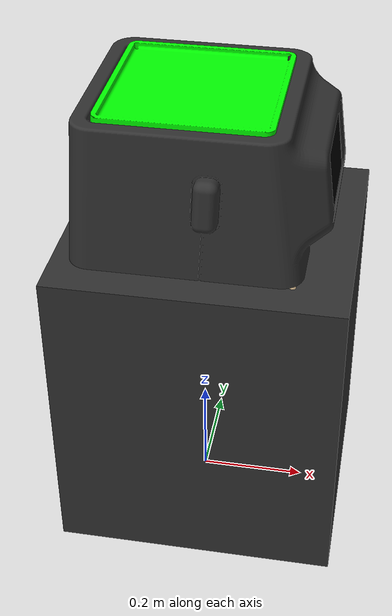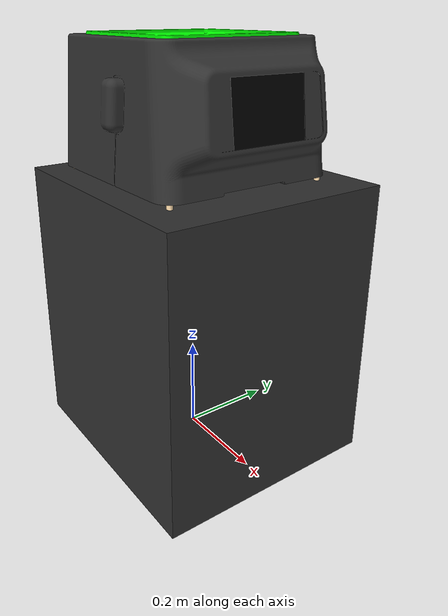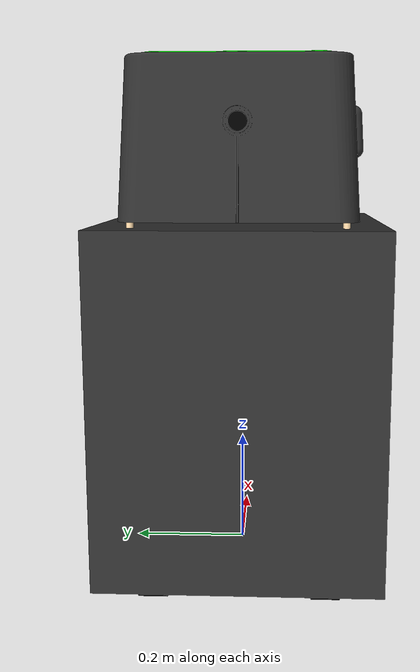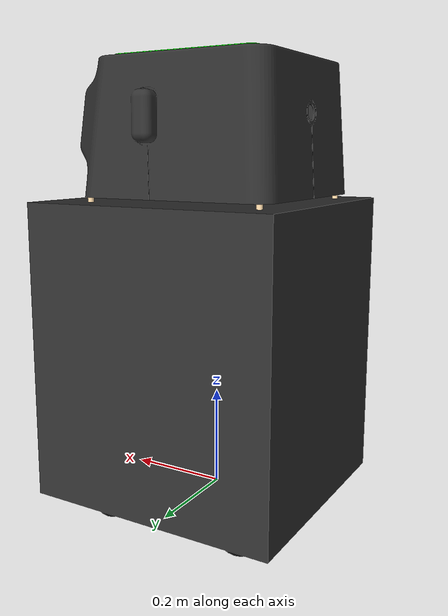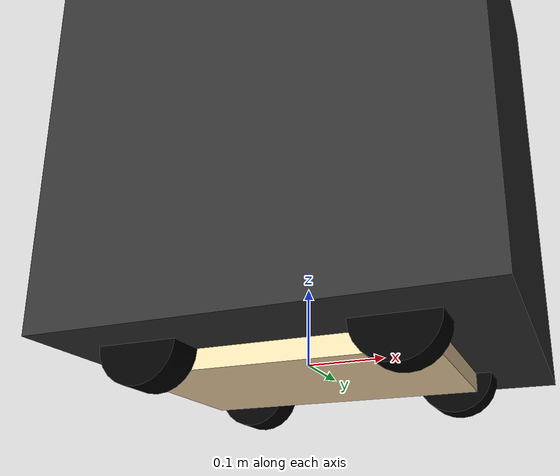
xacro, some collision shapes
<?xml version="1.0"?>
<robot name="cr2" xmlns:xacro="http://ros.org/wiki/xacro">

  <xacro:include filename="$(find cr2_description)/urdf/materials.urdf.xacro" />
  <xacro:include filename="$(find cr2_description)/urdf/common.urdf.xacro" />
  <xacro:include filename="$(find cr2_description)/urdf/modified_wheels.urdf.xacro" />
  <xacro:include filename="$(find cr2_description)/urdf/helpers/add_wheels.urdf.xacro" />
  <xacro:include filename="$(find cr2_description)/urdf/helpers/add_base_link.urdf.xacro"/>
  <xacro:include filename="$(find cr2_description)/urdf/helpers/add_body.urdf.xacro"/>
  <xacro:include filename="$(find cr2_description)/urdf/helpers/add_head.urdf.xacro"/>
  <xacro:include filename="$(find cr2_description)/urdf/helpers/add_sensors.urdf.xacro"/>

  <xacro:include filename="$(find cr2_description)/urdf/pillar.urdf.xacro"/>

  <xacro:include filename="$(find cr2_description)/params/cr2_params.urdf.xacro"/>

  <xacro:add_base
          parent_length="${base_platform_length}"
          parent_height="${base_platform_height}"
          parent_width="${base_platform_width}"/>
  <xacro:add_wheels
          parent_length="${base_platform_length}"
          parent_height="${base_platform_height}"
          parent_width="${base_platform_width}"
          mode="${mode}"/>
  <xacro:add_body  parent_link="base_platform">
    <xacro:body_to_base_platform_translation_mash/>
  </xacro:add_body>

  <xacro:add_head   parent_link="body"/>

  <xacro:pillar parent_link_name="body" position="FRONT_RIGHT"
                x="${front_back_pillar_offset}" z="${body_box_z}" y="${right_left_pillar_offset}"/>
  <xacro:pillar parent_link_name="body" position="FRONT_LEFT"
                x="${front_back_pillar_offset}" z="${body_box_z}" y="${-right_left_pillar_offset}"/>
  <xacro:pillar parent_link_name="body" position="REAR_RIGHT"
                x="${-front_back_pillar_offset}" z="${body_box_z}" y="${right_left_pillar_offset}"/>
  <xacro:pillar parent_link_name="body" position="REAR_LEFT"
                x="${-front_back_pillar_offset}" z="${body_box_z}" y="${-right_left_pillar_offset}"/>

  <xacro:add_sensors/>

  <xacro:include filename="$(find cr2_description)/robot/cr2.gazebo.xacro"/>

</robot>

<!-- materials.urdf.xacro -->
<robot xmlns:xacro="http://ros.org/wiki/xacro">

  <xacro:macro name="white_material">
    <material name="white">
      <color rgba="1.0 1.0 1.0 1.0"/>
    </material>
  </xacro:macro>

  <xacro:macro name="black_material">
    <material name="black">
      <color rgba="0.0 0.0 0.0 1.0"/>
    </material>
  </xacro:macro>

  <xacro:macro name="navajo_white_material">
    <material name="navajo_white">
      <color rgba="1.0 0.87 0.68 1.0"/>
    </material>
  </xacro:macro>

  <xacro:macro name="red_material">
    <material name="red">
      <color rgba="1.0 0.0 0.0 1.0"/>
    </material>
  </xacro:macro>

  <xacro:macro name="green_material">
    <material name="green">
      <color rgba="0.0 1.0 0.0 1.0"/>
    </material>
  </xacro:macro>

  <xacro:macro name="blue_material">
    <material name="blue">
      <color rgba="0.0 0.0 1.0 1.0"/>
    </material>
  </xacro:macro>

  <xacro:macro name="set_material" params="color">
  	<material name="${color}">
	    <xacro:if value="${color == 'White'}">
                <color rgba="1.0 1.0 1.0 1.0"/>
	    </xacro:if>
	    <xacro:if value="${color == 'Black'}">
                <color rgba="0.0 0.0 0.0 1.0"/>
	    </xacro:if>
	    <xacro:if value="${color == 'Red'}">
        	<color rgba="1.0 0.0 0.0 1.0"/>
	    </xacro:if>
	    <xacro:if value="${color == 'Green'}">
        	<color rgba="0.0 1.0 0.0 1.0"/>
	    </xacro:if>
	    <xacro:if value="${color == 'Blue'}">
                <color rgba="0.0 0.0 1.0 1.0"/>
	    </xacro:if>
	    <xacro:if value="${color == 'Yellow'}">
                <color rgba="1.0 1.0 0.0 1.0"/>
	    </xacro:if>
	    <xacro:if value="${color == 'Grey'}">
                <color rgba="0.5 0.5 0.5 1.0"/>
	    </xacro:if>
      <xacro:if value="${color == 'DarkGrey'}">
                <color rgba="0.19 0.19 0.19 1.0"/>
	    </xacro:if>
    </material>
  </xacro:macro>

  <!-- Full list of colors is available here
	  http://wiki.ros.org/simulator_gazebo/Tutorials/ListOfMaterials
  -->
  <xacro:macro name="set_gazebo_material" params="color">
	  <material>Gazebo/${color}</material>
  </xacro:macro>

</robot>

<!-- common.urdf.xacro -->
<robot xmlns:xacro="http://ros.org/wiki/xacro">
  <xacro:macro name="sphere_inertia" params="mass radius">

    <inertial>
      <mass value="${mass}"/>
      <origin xyz="0 0 0"/>

      <inertia ixx="${2*mass*radius*radius/5}" ixy="0.0" ixz="0.0"
               iyy="${2*mass*radius*radius/5}" iyz="0.0"
               izz="${2*mass*radius*radius/5}"/>
    </inertial>
  </xacro:macro>

  <xacro:macro name="sphere_inertia_gazebo" params="mass radius">
    <inertial>
      <mass>${mass}</mass>
      <inertia>
        <ixx>${2*mass*radius*radius/5}</ixx>
        <ixy>0</ixy>
        <iyy>${2*mass*radius*radius/5}</iyy>
        <ixz>0</ixz>
        <iyz>0</iyz>
        <izz>${2*mass*radius*radius/5}</izz>
      </inertia>
    </inertial>
  </xacro:macro>

  <xacro:macro name="sphere_geometry" params="radius">
    <geometry>
      <sphere radius="${radius}"/>
    </geometry>
  </xacro:macro>

  <xacro:macro name="sphere_geometry_gazebo" params="radius">
    <geometry>
      <sphere>
        <radius>${radius}</radius>
      </sphere>
    </geometry>
  </xacro:macro>

  <xacro:macro name="sphere_collision" params="radius">
    <collision>
      <xacro:sphere_geometry radius="${radius}"/>
    </collision>
  </xacro:macro>

  <xacro:macro name="cylinder_inertia" params="mass radius height">
    <inertial>
      <mass value="${mass}"/>
      <origin xyz="0 0 0"/>
      <inertia ixx="${(3*radius*radius + height*height)*mass/12}" ixy="0.0" ixz="0.0"
               iyy="${(3*radius*radius + height*height)*mass/12}" iyz="0.0"
               izz="${radius*radius*mass/2}"/>
    </inertial>
  </xacro:macro>

  <xacro:macro name="cylinder_geometry" params="radius height">
    <geometry>
      <cylinder length="${height}" radius="${radius}"/>
    </geometry>
  </xacro:macro>

  <xacro:macro name="cylinder_collision" params="radius height">
    <collision>
      <xacro:cylinder_geometry radius="${radius}" height="${height}"/>
    </collision>
  </xacro:macro>

  <xacro:macro name="set_box" params="width height depth">
    <geometry>
      <box size="${width} ${height} ${depth}"/>
    </geometry>
  </xacro:macro>

  <xacro:macro name="set_inertial"
               params="mass
                       width
                       height
                       depth
                       *origin_">
    <inertial>
      <xacro:insert_block name="origin_" />
      <mass value="${mass}"/>
      <inertia ixx="${(depth*depth + height*height)*mass/12}" ixy="0.0" ixz="0.0"
               iyy="${(depth*depth + width*width)*mass/12}" iyz="0.0"
               izz="${(width*width + height*height)*mass/12}"/>
    </inertial>
  </xacro:macro>

  <xacro:macro name="box_inertia" params="mass width height depth x:=0 y:=0 z:=0 roll:=0 pitch:=0 yaw:=0">
    <inertial>
      <origin xyz="${x} ${y} ${z}" rpy="${roll} ${pitch} ${yaw}"/>
      <mass value="${mass}"/>
      <inertia ixx="${(depth*depth + height*height)*mass/12}" ixy="0.0" ixz="0.0"
               iyy="${(depth*depth + width*width)*mass/12}" iyz="0.0"
               izz="${(width*width + height*height)*mass/12}"/>
    </inertial>
  </xacro:macro>

  <xacro:macro name="box_geometry" params="width height depth">
    <geometry>
      <box size="${width} ${height} ${depth}"/>
    </geometry>
  </xacro:macro>

  <xacro:macro name="box_collision" params="*origin width height depth">
    <collision>
      <xacro:insert_block name="origin" />
      <xacro:box_geometry width="${width}" height="${height}" depth="${depth}"/>
    </collision>
  </xacro:macro>

  <!--TODO concider do we realy need it (refactor nested xacro if needed, not sure-->
  <xacro:macro name="mesh_collision" params="*origin *mesh">
    <collision>
    </collision>
  </xacro:macro>

</robot>

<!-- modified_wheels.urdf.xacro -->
<robot xmlns:xacro="http://ros.org/wiki/xacro">

    <xacro:include filename="$(find cr2_description)/params/cr2_params.urdf.xacro"/>

    <xacro:macro name="wheel" params="prefix
                                       side
                                        wheel_type
                                        mode
                                        *joint_pose">

        <link name="${prefix}_${side}_wheel_link">
            <visual>
                <xacro:if value="${mode == 'debug'}">
                    <origin xyz="0 0 0" rpy="${PI/2} 0 0"/>
                    <geometry>
                        <cylinder radius="${wheel_radius}" length="${wheel_width}"/>
                    </geometry>
                </xacro:if>

                <xacro:if value="${mode != 'debug'}">
                    <origin xyz="${-wheel_radius - 0.0055}
                                 ${wheel_width - 0.01}
                                 ${-wheel_radius - 0.003}"

                            rpy="${PI/2} 0 0"/>
                <xacro:load_mash_scaled
                        mash_filename="package://cr2_description/meshes/Mecanum_Wheel_${wheel_type}.stl"
                        scale_proportion="0.0008" />
                </xacro:if>
                <material name="black" />
            </visual>

            <collision>
                <origin xyz="0 0 0" rpy="${PI/2} 0 0"/>
                <geometry>
                    <cylinder radius="${wheel_radius}" length="${wheel_width}"/>
                </geometry>
            </collision>

            <inertial>
                <origin xyz="0 0 0" rpy="0 0 0"/>
                <mass value="2.3"/>
                <inertia ixx="3.3212e-3" ixy="0" ixz="0"
                            iyy="6.6424e-3" iyz="0"
                            izz="3.3212e-3"/>
            </inertial>
        </link>

        <joint name="${prefix}_${side}_wheel" type="continuous">
            <parent link="base_platform"/>
            <child link="${prefix}_${side}_wheel_link" />
            <xacro:insert_block name="joint_pose" />
            <axis xyz="0 1 0" />
        </joint>

        <transmission name="${prefix}_wheel_trans">
            <type>transmission_interface/SimpleTransmission</type>
            <joint name="${prefix}_${side}_wheel">
                <hardwareInterface>hardware_interface/VelocityJointInterface</hardwareInterface>
            </joint>
            <actuator name="${prefix}_${side}_actuator">
                <mechanicalReduction>60</mechanicalReduction>
                <motorTorqueConstant>4.4</motorTorqueConstant>
            </actuator>
        </transmission>
    </xacro:macro>

</robot>

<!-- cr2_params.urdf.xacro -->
<robot xmlns:xacro="http://ros.org/wiki/xacro">

    <!--TODO ! make it in normal '.config' file -->

    <!--GLOBAL-->

    <xacro:property name="PI" value="3.1415"/>

    <xacro:property name="scale_proportion" value="0.001"/>

    <xacro:macro name="load_mash_scaled"
                 params="mash_filename
                         scale_proportion" >
        <geometry>
            <mesh filename="${mash_filename}" scale="${scale_proportion} ${scale_proportion} ${scale_proportion}"/>
        </geometry>
    </xacro:macro>

    <xacro:macro name="dummy_interia">
        <xacro:box_inertia
                width="0"
                height="0"
                depth="0"
                mass="0"/>
    </xacro:macro>

    <xacro:property name="mode" value="debug"/> <!-- For performance purposes we temporary remove real geometry of wheels and put simple cylinders -->

    <!--/GLOBAL-->

    <!--MASHES-->
    <xacro:property name="cr2_body_mash" value="package://cr2_description/meshes/body.stl"/>
    <xacro:property name="cr2_head_mash" value="package://cr2_description/meshes/head.stl"/>
    <xacro:property name="cr2_wheel_1_mash" value="package://cr2_description/meshes/Mecanum_Wheel_1.stl"/>
    <xacro:property name="cr2_wheel_2_mash" value="package://cr2_description/meshes/Mecanum_Wheel_2.stl"/>
    <xacro:property name="back_cover_mash" value="package://cr2_description/meshes/back_cover.stl"/>
    <xacro:property name="tray_mash" value="package://cr2_description/meshes/tray.stl"/>
    <!--/MASHES-->

    <!--DEBUG-->
    <!--/DEBUG-->
    <xacro:property name="body_color"           value="DarkGrey"/>
    <xacro:property name="back_cover_color"     value="DarkGrey"/>

<!--BODY-->
    <!--TODO measure on assambled robot-->
    <xacro:property name="margin_from_ground_to_body" value="0.03"/>

    <xacro:property name="body_width"           value="0.662"/>     <!-- has been measured via Rviz -->
    <xacro:property name="body_height"          value="0.896"/>     <!-- has been measured via Rviz -->
    <xacro:property name="body_lenght"          value="0.752"/>     <!-- has been measured via Rviz -->
    <!--TODO Check body mass-->
    <xacro:property name="body_mass"            value="3"/>

    <xacro:property name="back_cover_width"     value="0.195"/>     <!-- has been measured via Rviz -->
    <xacro:property name="back_cover_height"    value="0.001"/>     <!-- has been measured via Rviz -->
    <xacro:property name="back_cover_lenght"    value="0.578"/>     <!-- has been measured via Rviz -->

    <!--TODO Check back_cover mass -->
    <xacro:property name="back_cover_mass"      value="0.0"/>

    <xacro:property name="body_box_x"      value="0.525"/>
    <xacro:property name="body_box_y"      value="0.486"/>
    <xacro:property name="body_box_z"      value="0.60"/>
    <xacro:property name="body_box_clearence" value="0.0"/>
    <xacro:property name="mesh_x_offset" value="0.27"/>
    <xacro:property name="mesh_y_offset" value="-0.24"/>

<!--TODO make general joint translation then -->
    <xacro:macro name="body_to_base_platform_translation_mash">
        <origin xyz="${mesh_x_offset}
                     ${mesh_y_offset}
                     ${body_box_clearence}"
                rpy="${pi/2} 0 ${pi}"/>
    </xacro:macro>
    <xacro:macro name="body_to_base_platform_translation_box">
        <origin xyz="${front_wheels_x_offset}
                     0
                     ${body_box_z/2}"
                rpy="${pi/2} 0 ${pi/2}"/>

    </xacro:macro>

    <xacro:property name="body_back_angle" value=" ${0.0174 * 3 + 0.00872665}"/>
    <xacro:macro name="back_cover_mash_translaton">
        <origin xyz="${body_box_x - front_wheels_x_offset + 0.01}
                             0
                             ${body_box_y - 0.017}"
                rpy="0
                     ${pi/2}
                     ${body_back_angle}"/>
    </xacro:macro>

    <!--/BODY-->

    <!-- MECANUM WHEELS PLATFORM -->

    <xacro:property name="motor_holder_radius" value="0.02"/>
    <xacro:property name="motor_holder_height" value="0.01"/>
    <xacro:property name="motor_holder_mass" value="0.08"/>
    <xacro:property name="motor_holder_mass" value="0.088"/>

    <xacro:property name="wheel_radius" value="0.05"/>
    <xacro:property name="wheel_width" value="0.05"/>
    <xacro:property name="wheel_diameter" value="${2 * wheel_radius}"/>
    <xacro:property name="wheel_mass" value="0.1"/>

    <!--using this parameter as the basis of calculations, as it is most important-->
    <xacro:property name="diff_wheels_front_back" value="0.3"/>
    <xacro:property name="diff_wheels_left_right" value="0.3"/>

    <!--TODO verify-->
    <xacro:property name="base_link_mass" value="5"/>
    <xacro:property name="base_platform_length"
                    value="${diff_wheels_front_back + (2 * wheel_radius) - front_wheels_x_offset}"/> <!-- value="0.36": OLD value from datasheet-->
    <xacro:property name="base_platform_width"
                    value="${diff_wheels_left_right - (2 * (wheel_width/2)) }"/> <!--approx 0.345 - 0.1 -->
    <xacro:property name="base_platform_height" value="0.05"/>

    <!--ambiguouse value at datasheet, it width of base (yellow) detail with wheels and stuf mounterd on it-->
    <xacro:property name="base_platform_origin_above_ground" value="0"/>
    <!--again troubles with Datasheet : 0.1 = 2* wheel radius-->
    <!--TODO check appropriate mass-->
    <xacro:property name="base_platform_mass" value="10"/>

    <!--NOTE: x : regarding to length;  y : regarding to width-->
    <xacro:property name="wheels_x_translation" value="${base_platform_length/2 - wheel_radius}"/>
    <xacro:property name="front_wheels_x_offset" value="0.02"/>
    <xacro:property name="sidewise_wheels_y_translation" value="${base_platform_width/2 + wheel_width/2}"/>

    <xacro:macro name="f_l_wheel_pose">
        <origin xyz="${wheels_x_translation + front_wheels_x_offset}
                     ${sidewise_wheels_y_translation}
                      0"
                rpy="0 0 0" />
    </xacro:macro>
    <xacro:macro name="f_r_wheel_pose">
        <origin xyz="${wheels_x_translation + front_wheels_x_offset}
                     ${-(sidewise_wheels_y_translation)}
                     0"
                rpy="0 0 0" />
    </xacro:macro>
    <xacro:macro name="r_l_wheel_pose">
        <origin xyz="${-(wheels_x_translation)}
                     ${sidewise_wheels_y_translation}
                      0"
                rpy="0 0 0" />
    </xacro:macro>
    <xacro:macro name="r_r_wheel_pose">
        <origin xyz="${-(wheels_x_translation)}
                     ${-(sidewise_wheels_y_translation)}
                     0"
                rpy="0 0 0" />
    </xacro:macro>
    <!-- /MECANUM WHEELS -->

    <!--HEAD-->
    <xacro:property name="head_width"   value="0.579"/>     <!-- has been measured via Rviz -->
    <xacro:property name="head_height"  value="0.389"/>     <!-- has been measured via Rviz -->
    <xacro:property name="head_lenght"  value="0.675"/>     <!-- has been measured via Rviz -->
    <!--TODO Check head mass-->
    <xacro:property name="head_mass"    value="1"/>

    <xacro:property name="head_box_z" value="0.26"/>
    <xacro:property name="head_box_x" value="${body_box_x}"/>
    <xacro:property name="head_box_y" value="${body_box_y}"/>

    <xacro:property name="head_to_body_margin" value="0.02"/>

    <xacro:macro name="head_to_body_translation_mash">
        <origin xyz="${mesh_x_offset - 0.03}
                           ${mesh_y_offset + 0.025}
                           ${head_to_body_margin}"
                rpy="${pi/2} 0 ${pi}"/>
    </xacro:macro>

    <xacro:macro name="tray_offset">
        <origin xyz="${head_box_x/2 - 0.03}
                     ${head_box_z/2 - 0.025}
                     ${head_box_y/2 - 0.025}"
                rpy="0 0 0"/>
    </xacro:macro>

    <xacro:macro name="monitor_offset">
        <origin xyz="0
                     0.01
                     ${body_box_y/2 - 0.015}"
                rpy="${pi/2}
                     ${ - 0.0174 * 7 + 0.00872665 }
                     ${-pi/2}"/>
    </xacro:macro>
    <xacro:macro name="head_to_body_translation_box">
                <origin xyz="0
                             0
                             ${body_box_z + head_box_z/2 + head_to_body_margin}"
                rpy="${pi/2} 0 ${pi/2}"/>
    </xacro:macro>

    <!--TODO get better head box, for now using x, y from body-->

    <xacro:property name="tray_width"   value="0.449"/>     <!-- has been measured via Rviz -->
    <xacro:property name="tray_height"  value="0.03"/>      <!-- has been measured via Rviz -->
    <xacro:property name="tray_lenght"  value="0.449"/>     <!-- has been measured via Rviz -->
    <!--TODO Check head tray mass-->
    <xacro:property name="tray_mass"    value="0.1"/>

    <xacro:property name="monitor_width"   value="0.13"/>
    <xacro:property name="monitor_height"  value="0.001"/>
    <xacro:property name="monitor_lenght"  value="0.16"/>
    <!--&lt;!&ndash;TODO Check monitor mass&ndash;&gt;-->
    <xacro:property name="monitor_mass"    value="0.295"/>  <!-- weight of iPad mini 4 -->
    <!--/HEAD-->

    <!--PILLARS-->
    <xacro:property name="pillar_radius" value="0.006"/>
    <xacro:property name="pillar_height" value="${head_to_body_margin}"/>
    <xacro:property name="pillar_mass" value="0.001"/>
    <!--/PILLARS-->

<!--SENSORS-->

    <xacro:property name="ultrasonic_bottom_margin" value="0.15"/>
    <xacro:property name="ultrasonic_top_margin" value="0.765"/>
    <xacro:property name="range_sensor_margin" value="1.268"/>

    <!--ULTRASONIC-->

    <xacro:property name="ultrasonic_radius" value="0.006"/>
    <xacro:property name="ultrasonic_height" value="0.0138"/>

    <xacro:property name="ultrasonic_pcb_height" value="0.0012"/>
    <xacro:property name="ultrasonic_pcb_length" value="0.045"/>
    <xacro:property name="ultrasonic_pcb_width" value="0.02"/>
    <!--TODO we will not emulate all ultrasonic's PCB so which mass we should use-->
    <xacro:property name="ultrasonic_mass" value="0.019"/>
    <xacro:property name="ultrasonic_pcb_mass" value="0.019"/>

    <!--/ULTRASONIC-->

    <!--RPLIDAR-->

    <xacro:macro name="rplidar_origin">
        <origin xyz="0.0
                     0.0
                     ${body_box_z - head_to_body_margin/2}"
                rpy="0 0 0"/>
    </xacro:macro>

    <xacro:property name="front_back_pillar_offset" value="${body_box_x/2 - 0.08}"/>
    <xacro:property name="right_left_pillar_offset" value="${0.07-body_box_y/2}"/>

    <xacro:property name="rplidar_radius" value="0.038"/>
    <xacro:property name="rplidar_height" value="0.041"/>
    <xacro:property name="rplidar_mass" value="0.019"/>

    <!--/RPLIDAR-->

    <!--RANGE-->
    <xacro:property name="range_radius" value="0.038"/>
    <xacro:property name="range_emitter_height" value="0.007"/>
    <xacro:property name="range_emitter_radius" value="0.004"/>
    <xacro:property name="range_collector_radius" value="0.002"/>
    <!--TODO we will not emulate all ultrasonic's PCB so which mass we should use-->
    <xacro:property name="range_mass" value="0.019"/>

    <xacro:property name="range_controller_width" value="0.024"/>
    <xacro:property name="range_controller_height" value="0.01"/>
    <xacro:property name="range_controller_depth" value="0.04"/>
    <!--/RANGE-->

<!--/SENSORS-->

</robot>

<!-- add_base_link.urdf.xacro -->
<robot xmlns:xacro="http://ros.org/wiki/xacro">

    <xacro:include filename="$(find cr2_description)/params/cr2_params.urdf.xacro"/>

    <xacro:macro name="add_base" params="parent_length
                                            parent_height
                                            parent_width">

        <link name="base_link"/> <!--it is intended to be empty-->

        <joint name="base_link_joint" type="fixed">
            <origin xyz="0 0 0" rpy="0 0 0" />
            <parent link="base_link"/>
            <child link="base_platform" />
        </joint>

        <link name="base_platform" >
            <visual>
                <origin xyz="0 0 ${base_platform_origin_above_ground}" rpy="${pi/2} 0 ${pi/2}"/>
                <xacro:set_box width="${parent_width}"
                               height="${parent_height}"
                               depth="${parent_length}"/>
                <xacro:navajo_white_material/>
                <!--TODO change it (not crucial), because it is being extracted to definition inplace-->
            </visual>
            <collision>
                <origin xyz="0 0 ${base_platform_origin_above_ground}" rpy="${pi/2} 0 ${pi/2}"/>
                <xacro:set_box width="${parent_width}"
                               height="${parent_height}"
                               depth="${parent_length}"/>
            </collision>

            <xacro:set_inertial width="${parent_width}"
                                height="${parent_height}"
                                 depth="${parent_length}"
                                mass="${base_platform_mass}">
                <!--TODO check for it, maybe origin should be changed-->
                <origin xyz="0 0 ${base_platform_origin_above_ground}" rpy="${pi/2} 0 ${pi/2}"/>
            </xacro:set_inertial>
        </link>

    </xacro:macro>

</robot>

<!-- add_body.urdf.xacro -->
<robot xmlns:xacro="http://ros.org/wiki/xacro">

    <xacro:include filename="$(find cr2_description)/params/cr2_params.urdf.xacro"/>

    <xacro:macro name="add_body" params="parent_link
                                        *body_to_platform_translation">
        <joint name="body_link_joint" type="fixed">
            <parent link="${parent_link}"/>
            <child link="body"/>
        </joint>

        <link name="body">
            <visual>
                <xacro:load_mash_scaled
                        mash_filename="${cr2_body_mash}"
                        scale_proportion="${scale_proportion}" />
                <xacro:set_material color="${body_color}"/>
                <xacro:body_to_base_platform_translation_mash/>
            </visual>

            <collision>
                <xacro:set_box width="${body_box_y}"
                               height="${body_box_z}"
                               depth="${body_box_x}"/>
                <xacro:body_to_base_platform_translation_box/>
            </collision>

            <xacro:set_inertial width="${body_box_y}"
                                height="${body_box_z}"
                                depth="${body_box_x}"
                                mass="${body_mass}">
                <!--TODO check for it, maybe origin should be changed-->
                <xacro:body_to_base_platform_translation_box/>
            </xacro:set_inertial>
        </link>

        <link name="back_cover">
            <visual>
                <xacro:back_cover_mash_translaton/>
                <xacro:load_mash_scaled
                        mash_filename="${back_cover_mash}"
                        scale_proportion="${scale_proportion}" />
                <xacro:set_material color="${back_cover_color}"/>
            </visual>

            <xacro:dummy_interia/>
        </link>

        <joint name="back_cover_joint" type="fixed">
            <xacro:body_to_base_platform_translation_mash/>
            <parent link="body"/>
            <child link="back_cover"/>
        </joint>

    </xacro:macro>
</robot>

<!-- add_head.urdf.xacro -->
<robot xmlns:xacro="http://ros.org/wiki/xacro">

    <xacro:include filename="$(find cr2_description)/params/cr2_params.urdf.xacro"/>

    <xacro:macro name="add_head" params="parent_link">

        <joint name="head_link_joint" type="fixed">
            <origin xyz="0
                         0
                         0"
                    rpy="0
                         0
                         0 "/>
            <parent link="${parent_link}"/>
            <child link="head"/>
        </joint>

        <link name="head">
            <visual>
                <xacro:head_to_body_translation_mash/>
                <xacro:load_mash_scaled
                        mash_filename="${cr2_head_mash}"
                        scale_proportion="${scale_proportion}" />
              <xacro:set_material color="DarkGrey"/>
            </visual>

            <collision>
                <xacro:head_to_body_translation_box/>
                <xacro:set_box width="${head_box_y}"
                               height="${head_box_z}"
                               depth="${head_box_x}"/>
            </collision>

            <xacro:set_inertial width="${head_box_y}"
                                height="${head_box_z}"
                                depth="${head_box_x}"
                                mass="${head_mass}">
                <xacro:head_to_body_translation_box/>
            </xacro:set_inertial>

        </link>

        <link name="tray">
            <visual>
                <xacro:tray_offset/>
                <xacro:load_mash_scaled
                        mash_filename="package://cr2_description/meshes/tray.stl"
                        scale_proportion="${scale_proportion}" />
                <xacro:green_material/>
            </visual>

            <xacro:box_inertia
                    width="${tray_width}"
                    height="${tray_height}"
                    depth="${tray_lenght}"
                    mass="${tray_mass}"/>
        </link>

        <joint name="tray_joint" type="fixed">
            <xacro:head_to_body_translation_box/>
            <parent link="head"/>
            <child link="tray"/>
        </joint>

        <link name="monitor">
            <visual>
                <xacro:monitor_offset/>
                <xacro:box_geometry
                      width="${monitor_width}"
                      height="${monitor_height}"
                      depth="${monitor_lenght}"/>
              <xacro:black_material/>
            </visual>

            <xacro:box_inertia
                    width="${monitor_width}"
                    height="${monitor_height}"
                    depth="${monitor_lenght}"
                    mass="${monitor_mass}"/>

        </link>

        <joint name="monitor_joint" type="fixed">
            <xacro:head_to_body_translation_box/>
            <parent link="head"/>
            <child link="monitor"/>
        </joint>
    </xacro:macro>
</robot>

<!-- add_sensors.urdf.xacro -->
<robot xmlns:xacro="http://ros.org/wiki/xacro">

    <xacro:include filename="$(find cr2_description)/params/cr2_params.urdf.xacro"/>

    <xacro:include filename="$(find cr2_description)/urdf/sensors/rplidar.urdf.xacro"/>
    <xacro:include filename="$(find cr2_description)/urdf/sensors/ultrasonic.urdf.xacro"/>
    <xacro:include filename="$(find cr2_description)/urdf/sensors/range.urdf.xacro"/>
    <xacro:include filename="$(find cr2_description)/urdf/sensors/imu.urdf.xacro"/>

        <!--Imu link and plugin-->
    <xacro:imu_sensor xyz="-0.1 0 ${0.04 + 0.01}"
                  rpy="0 0 0"
                  parent="base_link">
    </xacro:imu_sensor>

    <xacro:macro name="add_sensors">
        <!--LIDAR-->
        <xacro:rplidar parent_link_name="head"/>

        <!--ULTRASONIC-->

        <!--RANGE SENSOR-->
    </xacro:macro>
</robot>

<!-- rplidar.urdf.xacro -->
<robot xmlns:xacro="http://ros.org/wiki/xacro">

    <xacro:include filename="$(find cr2_description)/params/cr2_params.urdf.xacro"/>

    <xacro:macro name="rplidar" params="parent_link_name">
        <link name="laser_link">
            <visual>
                <xacro:cylinder_geometry height="${rplidar_height}" radius="${rplidar_radius}"/>
                <xacro:navajo_white_material/>
            </visual>

            <xacro:cylinder_collision height="${rplidar_height}" radius="${rplidar_radius}"/>
            <xacro:cylinder_inertia mass="${rplidar_mass}" height="${rplidar_height}" radius="${rplidar_radius}"/>
        </link>

        <joint name="laser_base_joint" type="fixed">
            <xacro:rplidar_origin/>
            <parent link="${parent_link_name}" />
            <child link="laser_link" />
        </joint>

        <link name="laser_oscillator">
            <visual>
                <xacro:cylinder_geometry height="0.001" radius="${rplidar_radius}"/>
                <xacro:blue_material/>
            </visual>

            <xacro:cylinder_collision height="0.001" radius="${rplidar_radius}"/>
            <xacro:cylinder_inertia mass="0.001" height="0.001" radius="${rplidar_radius}"/>

        </link>
        <joint name="laser_oscillator_joint" type="fixed">
            <origin xyz="0 0 ${rplidar_height/2 - 0.005}" rpy="0 0 ${pi}"/>
            <parent link="laser_link" />
            <child link="laser_oscillator" />
        </joint>

        <gazebo reference="laser_oscillator">
          <material>Gazebo/Green</material>
          <sensor type="ray" name="laser">
            <pose>0 0 0 0 0 0</pose>
            <visualize>false</visualize>

            <update_rate>40</update_rate>
            <ray>
              <scan>
                <horizontal>
                  <!--TODO: figureout exact samples for RPLIDAR A2-->
                  <samples>1081</samples>
                  <resolution>1</resolution>
                  <min_angle>0</min_angle>
                  <max_angle>6.283185</max_angle>
                </horizontal>
              </scan>
              <range>
                <!--TODO: figureout exact min/max for RPLIDAR A2-->
                <min>0.3</min>
                <max>10.0</max> <!--for this dist is configured navigator-->
                <resolution>0.01</resolution>
              </range>
              <noise>
                <type>gaussian</type>
                <mean>0.0</mean>
                <stddev>0.01</stddev>
              </noise>
            </ray>
            <plugin name="gazebo_ros_rplidar_controller" filename="libgazebo_ros_laser.so">
              <topicName>front/scan</topicName>
              <frameName>laser_oscillator</frameName>
            </plugin>
          </sensor>
       </gazebo>
    </xacro:macro>
</robot>

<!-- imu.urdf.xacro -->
<robot xmlns:xacro="http://www.ros.org/wiki/xacro" name="imu">

<xacro:macro name="imu_sensor" params="xyz rpy parent">
    <joint name="imu_sensor_joint" type="fixed">
        <axis xyz="0 0 1" />
        <origin xyz="${xyz}" rpy="${rpy}"/>
        <parent link="${parent}"/>
        <child link="imu_link"/>
    </joint>

    <link name="imu_link">
        <collision>
            <origin xyz="0 0 0" rpy="0 0 0"/>
            <geometry>
                <box size="0.02 0.02 0.02"/>
            </geometry>
        </collision>
        <visual>
            <origin xyz="0 0 0" rpy="0 0 0"/>
            <geometry>
                <box size="0.02 0.02 0.02"/>
            </geometry>
            <material name="iRobot/Red"/>
        </visual>
        <inertial>
            <mass value="0.001" />
            <origin xyz="0 0 0" rpy="0 0 0"/>
            <inertia ixx="0.00000015" ixy="0" ixz="0" iyy="0.00000015" iyz="0" izz="0.00000015" />
        </inertial>
    </link>

    <gazebo reference="imu_link">
        <gravity>true</gravity>
        <sensor name='imu_sensor' type='imu'>
            <always_on>1</always_on>
            <update_rate>100</update_rate>
            <visualize>1</visualize>
            <topic>__default_topic__</topic>
            <plugin name='imu_plugin' filename='libgazebo_ros_imu_sensor.so'>
                <topicName>imu_data</topicName>
                <frameName>imu_link</frameName>
                <bodyName>imu_sensor_link</bodyName>
                <updateRateHZ>10.0</updateRateHZ>
                <gaussianNoise>0.0</gaussianNoise>
                <xyzOffset>0 0 0</xyzOffset>
                <rpyOffset>0 0 0</rpyOffset>
            </plugin>
            <pose>0 0 0 0 0 0</pose>
        </sensor>
    </gazebo>

</xacro:macro>

</robot>

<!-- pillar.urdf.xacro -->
<robot xmlns:xacro="http://ros.org/wiki/xacro">

    <xacro:include filename="$(find cr2_description)/params/cr2_params.urdf.xacro"/>

    <xacro:macro name="pillar" params="parent_link_name position x y z">

        <link name="pillar_${position}_link">
            <visual>
              <xacro:cylinder_geometry
                      radius="${pillar_radius}"
                      height="${pillar_height}"/>
              <xacro:navajo_white_material/>
            </visual>

            <xacro:cylinder_collision
                    height="${pillar_height}"
                    radius="${pillar_radius}"/>

            <xacro:cylinder_inertia
                    mass="${pillar_mass}"
                    height="${pillar_height}"
                    radius="${pillar_radius}"/>
        </link>

        <joint name="pillar_${position}_joint" type="fixed">
            <origin xyz="${x} ${y} ${z}" rpy="0 0 0"/>
            <parent link="${parent_link_name}" />
            <child link="pillar_${position}_link" />
        </joint>

    </xacro:macro>

</robot>
